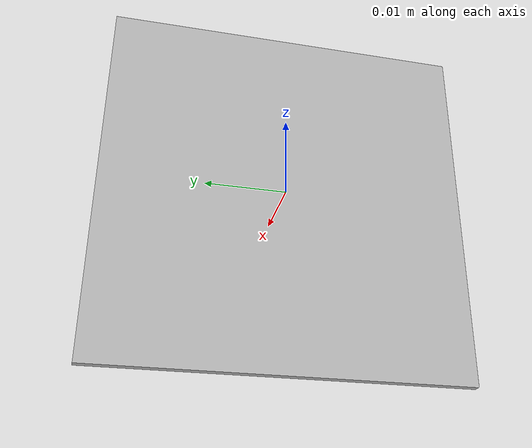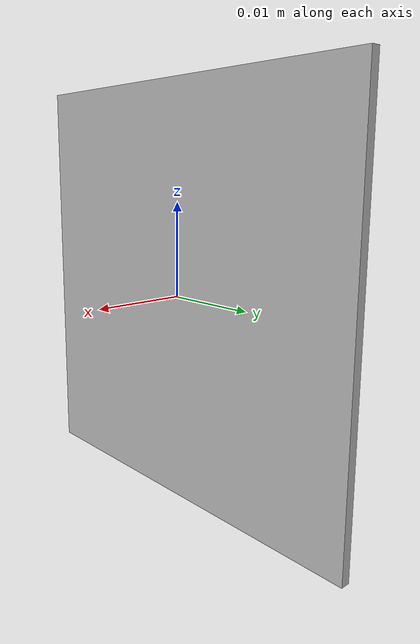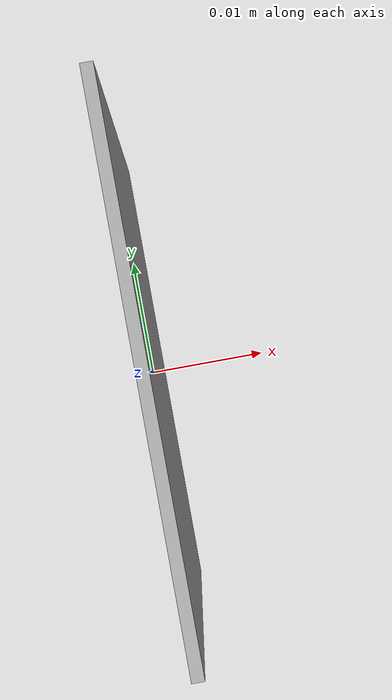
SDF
<?xml version="1.0" ?>
<sdf version="1.6">
  <model name="apriltag_0">
    <static>true</static>
    <link name="link">

      <!-- Visual: thin box with texture -->
      <visual name="visual">
        <geometry>
          <box>
            <size>0.001 0.045 0.045</size> <!-- very thin box -->
          </box>
        </geometry>
        <material>
          <script>
            <uri>model://apriltag_0/materials/scripts</uri>
            <uri>model://apriltag_0/materials/textures</uri>
            <name>apriltag_0_new/Material</name>
          </script>
        </material>
      </visual>

      <!-- Collision for physics -->
      <collision name="collision">
        <geometry>
          <box>
            <size>0.001 0.045 0.045</size>
          </box>
        </geometry>
      </collision>

    </link>
  </model>
</sdf>
